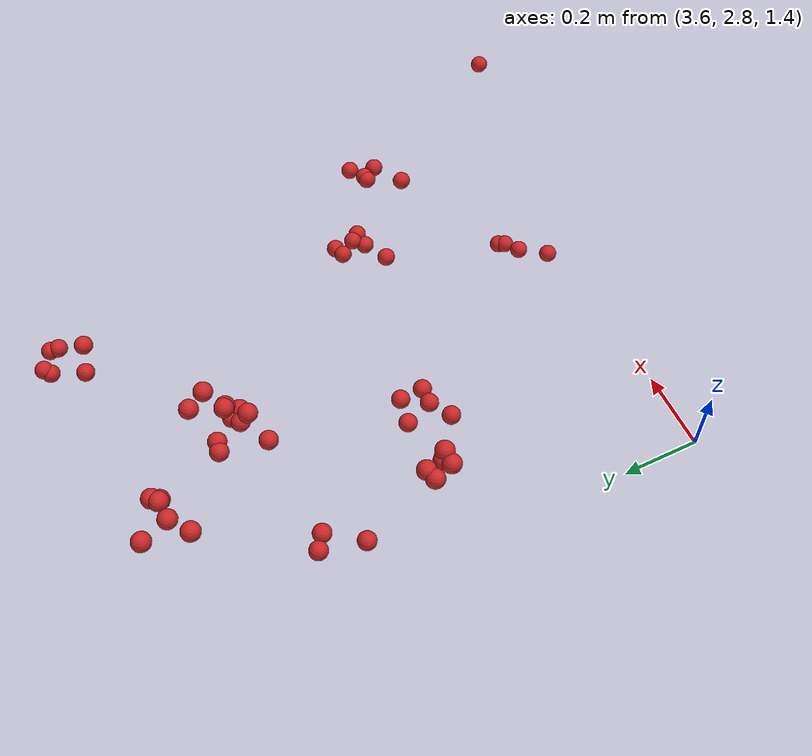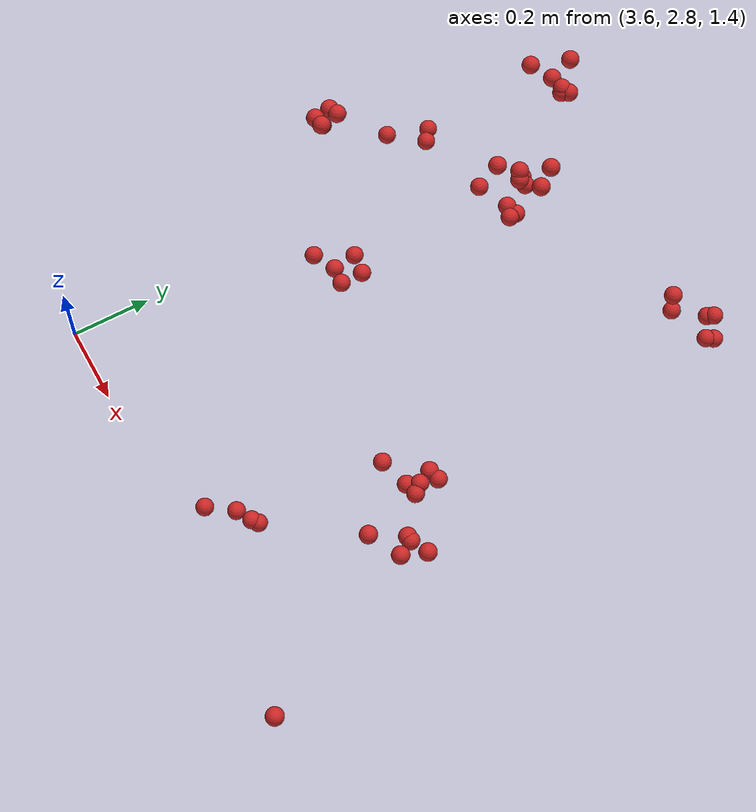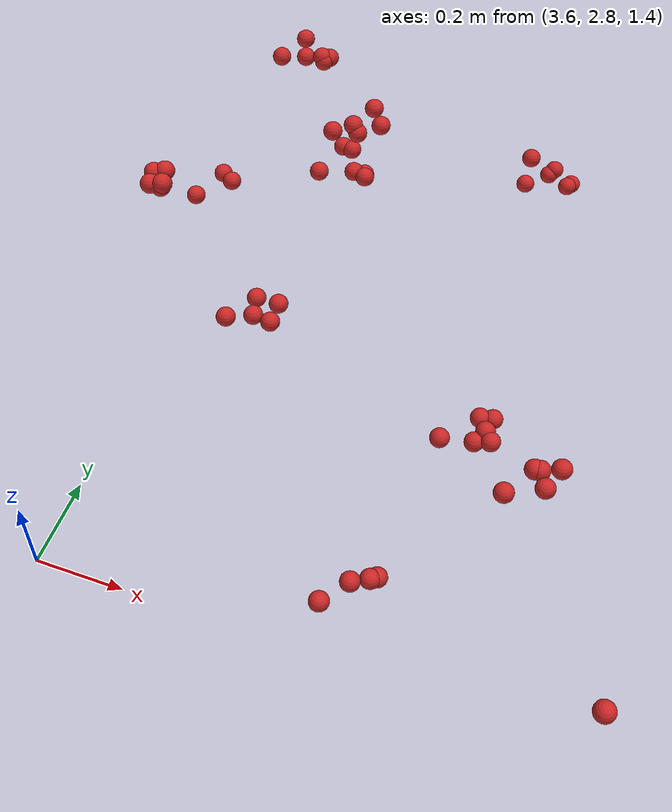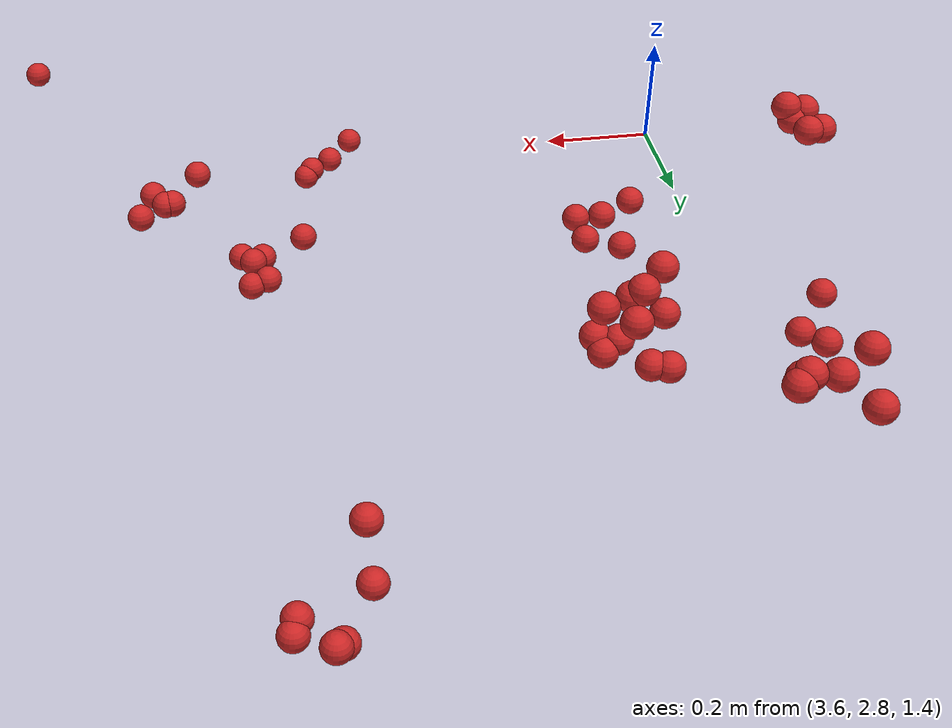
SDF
<sdf version="1.4">
 <model name="fruit_population">
  <static>true</static>
  <link name="fruit_2">
   <pose>4.334659351275422 3.28331785173383 1.552554481045821 0 0 0</pose>
   <collision name="fruit_collision_2"><geometry><sphere><radius>0.022</radius></sphere></geometry></collision>
   <visual name="visual">
    <geometry><sphere><radius>0.022</radius></sphere></geometry>
    <material><script><name>Gazebo/Red</name></script></material>
   </visual>
   <inertial>
    <mass>0.05</mass>
    <inertia>
     <ixx>9.679999999999999e-06</ixx>
     <ixy>0.0</ixy>
     <ixz>0.0</ixz>
     <iyy>9.679999999999999e-06</iyy>
     <iyz>0.0</iyz>
     <izz>9.679999999999999e-06</izz>
    </inertia>
   </inertial>
   <sensor name="fruit_contact_2" type="contact">
    <plugin name="contact_plugin_2" filename="libcontact_plugin.so"/>
    <contact><collision>fruit_collision_2</collision><topic>fruit_contact_topic_2</topic></contact>
   </sensor>
  </link>
  <link name="fruit_46">
   <pose>4.322756285475204 4.087503558933903 1.5737772385149176 0 0 0</pose>
   <collision name="fruit_collision_46"><geometry><sphere><radius>0.022</radius></sphere></geometry></collision>
   <visual name="visual">
    <geometry><sphere><radius>0.022</radius></sphere></geometry>
    <material><script><name>Gazebo/Red</name></script></material>
   </visual>
   <inertial>
    <mass>0.05</mass>
    <inertia>
     <ixx>9.679999999999999e-06</ixx>
     <ixy>0.0</ixy>
     <ixz>0.0</ixz>
     <iyy>9.679999999999999e-06</iyy>
     <iyz>0.0</iyz>
     <izz>9.679999999999999e-06</izz>
    </inertia>
   </inertial>
   <sensor name="fruit_contact_46" type="contact">
    <plugin name="contact_plugin_46" filename="libcontact_plugin.so"/>
    <contact><collision>fruit_collision_46</collision><topic>fruit_contact_topic_46</topic></contact>
   </sensor>
  </link>
  <link name="fruit_60">
   <pose>3.6940636815425827 4.036632999700671 1.8455435300737626 0 0 0</pose>
   <collision name="fruit_collision_60"><geometry><sphere><radius>0.022</radius></sphere></geometry></collision>
   <visual name="visual">
    <geometry><sphere><radius>0.022</radius></sphere></geometry>
    <material><script><name>Gazebo/Red</name></script></material>
   </visual>
   <inertial>
    <mass>0.05</mass>
    <inertia>
     <ixx>9.679999999999999e-06</ixx>
     <ixy>0.0</ixy>
     <ixz>0.0</ixz>
     <iyy>9.679999999999999e-06</iyy>
     <iyz>0.0</iyz>
     <izz>9.679999999999999e-06</izz>
    </inertia>
   </inertial>
   <sensor name="fruit_contact_60" type="contact">
    <plugin name="contact_plugin_60" filename="libcontact_plugin.so"/>
    <contact><collision>fruit_collision_60</collision><topic>fruit_contact_topic_60</topic></contact>
   </sensor>
  </link>
  <link name="fruit_91">
   <pose>4.209723910305282 2.8726865034884606 1.4810726799619405 0 0 0</pose>
   <collision name="fruit_collision_91"><geometry><sphere><radius>0.022</radius></sphere></geometry></collision>
   <visual name="visual">
    <geometry><sphere><radius>0.022</radius></sphere></geometry>
    <material><script><name>Gazebo/Red</name></script></material>
   </visual>
   <inertial>
    <mass>0.05</mass>
    <inertia>
     <ixx>9.679999999999999e-06</ixx>
     <ixy>0.0</ixy>
     <ixz>0.0</ixz>
     <iyy>9.679999999999999e-06</iyy>
     <iyz>0.0</iyz>
     <izz>9.679999999999999e-06</izz>
    </inertia>
   </inertial>
   <sensor name="fruit_contact_91" type="contact">
    <plugin name="contact_plugin_91" filename="libcontact_plugin.so"/>
    <contact><collision>fruit_collision_91</collision><topic>fruit_contact_topic_91</topic></contact>
   </sensor>
  </link>
  <link name="fruit_110">
   <pose>3.9002916754481634 3.826975810161621 1.8386889798394044 0 0 0</pose>
   <collision name="fruit_collision_110"><geometry><sphere><radius>0.022</radius></sphere></geometry></collision>
   <visual name="visual">
    <geometry><sphere><radius>0.022</radius></sphere></geometry>
    <material><script><name>Gazebo/Red</name></script></material>
   </visual>
   <inertial>
    <mass>0.05</mass>
    <inertia>
     <ixx>9.679999999999999e-06</ixx>
     <ixy>0.0</ixy>
     <ixz>0.0</ixz>
     <iyy>9.679999999999999e-06</iyy>
     <iyz>0.0</iyz>
     <izz>9.679999999999999e-06</izz>
    </inertia>
   </inertial>
   <sensor name="fruit_contact_110" type="contact">
    <plugin name="contact_plugin_110" filename="libcontact_plugin.so"/>
    <contact><collision>fruit_collision_110</collision><topic>fruit_contact_topic_110</topic></contact>
   </sensor>
  </link>
  <link name="fruit_117">
   <pose>3.807590318801169 3.3776291044536717 1.6400689129434316 0 0 0</pose>
   <collision name="fruit_collision_117"><geometry><sphere><radius>0.022</radius></sphere></geometry></collision>
   <visual name="visual">
    <geometry><sphere><radius>0.022</radius></sphere></geometry>
    <material><script><name>Gazebo/Red</name></script></material>
   </visual>
   <inertial>
    <mass>0.05</mass>
    <inertia>
     <ixx>9.679999999999999e-06</ixx>
     <ixy>0.0</ixy>
     <ixz>0.0</ixz>
     <iyy>9.679999999999999e-06</iyy>
     <iyz>0.0</iyz>
     <izz>9.679999999999999e-06</izz>
    </inertia>
   </inertial>
   <sensor name="fruit_contact_117" type="contact">
    <plugin name="contact_plugin_117" filename="libcontact_plugin.so"/>
    <contact><collision>fruit_collision_117</collision><topic>fruit_contact_topic_117</topic></contact>
   </sensor>
  </link>
  <link name="fruit_121">
   <pose>3.8775764384555416 3.794841752884628 1.73439635223546 0 0 0</pose>
   <collision name="fruit_collision_121"><geometry><sphere><radius>0.022</radius></sphere></geometry></collision>
   <visual name="visual">
    <geometry><sphere><radius>0.022</radius></sphere></geometry>
    <material><script><name>Gazebo/Red</name></script></material>
   </visual>
   <inertial>
    <mass>0.05</mass>
    <inertia>
     <ixx>9.679999999999999e-06</ixx>
     <ixy>0.0</ixy>
     <ixz>0.0</ixz>
     <iyy>9.679999999999999e-06</iyy>
     <iyz>0.0</iyz>
     <izz>9.679999999999999e-06</izz>
    </inertia>
   </inertial>
   <sensor name="fruit_contact_121" type="contact">
    <plugin name="contact_plugin_121" filename="libcontact_plugin.so"/>
    <contact><collision>fruit_collision_121</collision><topic>fruit_contact_topic_121</topic></contact>
   </sensor>
  </link>
  <link name="fruit_124">
   <pose>4.329039805926218 4.073743820483389 1.67377606460272 0 0 0</pose>
   <collision name="fruit_collision_124"><geometry><sphere><radius>0.022</radius></sphere></geometry></collision>
   <visual name="visual">
    <geometry><sphere><radius>0.022</radius></sphere></geometry>
    <material><script><name>Gazebo/Red</name></script></material>
   </visual>
   <inertial>
    <mass>0.05</mass>
    <inertia>
     <ixx>9.679999999999999e-06</ixx>
     <ixy>0.0</ixy>
     <ixz>0.0</ixz>
     <iyy>9.679999999999999e-06</iyy>
     <iyz>0.0</iyz>
     <izz>9.679999999999999e-06</izz>
    </inertia>
   </inertial>
   <sensor name="fruit_contact_124" type="contact">
    <plugin name="contact_plugin_124" filename="libcontact_plugin.so"/>
    <contact><collision>fruit_collision_124</collision><topic>fruit_contact_topic_124</topic></contact>
   </sensor>
  </link>
  <link name="fruit_149">
   <pose>4.501498149110639 3.158055221457446 1.6111703319243045 0 0 0</pose>
   <collision name="fruit_collision_149"><geometry><sphere><radius>0.022</radius></sphere></geometry></collision>
   <visual name="visual">
    <geometry><sphere><radius>0.022</radius></sphere></geometry>
    <material><script><name>Gazebo/Red</name></script></material>
   </visual>
   <inertial>
    <mass>0.05</mass>
    <inertia>
     <ixx>9.679999999999999e-06</ixx>
     <ixy>0.0</ixy>
     <ixz>0.0</ixz>
     <iyy>9.679999999999999e-06</iyy>
     <iyz>0.0</iyz>
     <izz>9.679999999999999e-06</izz>
    </inertia>
   </inertial>
   <sensor name="fruit_contact_149" type="contact">
    <plugin name="contact_plugin_149" filename="libcontact_plugin.so"/>
    <contact><collision>fruit_collision_149</collision><topic>fruit_contact_topic_149</topic></contact>
   </sensor>
  </link>
  <link name="fruit_153">
   <pose>3.6009380790036816 3.6902924799086536 1.663074999753007 0 0 0</pose>
   <collision name="fruit_collision_153"><geometry><sphere><radius>0.022</radius></sphere></geometry></collision>
   <visual name="visual">
    <geometry><sphere><radius>0.022</radius></sphere></geometry>
    <material><script><name>Gazebo/Red</name></script></material>
   </visual>
   <inertial>
    <mass>0.05</mass>
    <inertia>
     <ixx>9.679999999999999e-06</ixx>
     <ixy>0.0</ixy>
     <ixz>0.0</ixz>
     <iyy>9.679999999999999e-06</iyy>
     <iyz>0.0</iyz>
     <izz>9.679999999999999e-06</izz>
    </inertia>
   </inertial>
   <sensor name="fruit_contact_153" type="contact">
    <plugin name="contact_plugin_153" filename="libcontact_plugin.so"/>
    <contact><collision>fruit_collision_153</collision><topic>fruit_contact_topic_153</topic></contact>
   </sensor>
  </link>
  <link name="fruit_197">
   <pose>3.995893784266668 3.8918003896902347 1.829508518271714 0 0 0</pose>
   <collision name="fruit_collision_197"><geometry><sphere><radius>0.022</radius></sphere></geometry></collision>
   <visual name="visual">
    <geometry><sphere><radius>0.022</radius></sphere></geometry>
    <material><script><name>Gazebo/Red</name></script></material>
   </visual>
   <inertial>
    <mass>0.05</mass>
    <inertia>
     <ixx>9.679999999999999e-06</ixx>
     <ixy>0.0</ixy>
     <ixz>0.0</ixz>
     <iyy>9.679999999999999e-06</iyy>
     <iyz>0.0</iyz>
     <izz>9.679999999999999e-06</izz>
    </inertia>
   </inertial>
   <sensor name="fruit_contact_197" type="contact">
    <plugin name="contact_plugin_197" filename="libcontact_plugin.so"/>
    <contact><collision>fruit_collision_197</collision><topic>fruit_contact_topic_197</topic></contact>
   </sensor>
  </link>
  <link name="fruit_209">
   <pose>4.430021590904084 4.14375809000878 1.5558769405690935 0 0 0</pose>
   <collision name="fruit_collision_209"><geometry><sphere><radius>0.022</radius></sphere></geometry></collision>
   <visual name="visual">
    <geometry><sphere><radius>0.022</radius></sphere></geometry>
    <material><script><name>Gazebo/Red</name></script></material>
   </visual>
   <inertial>
    <mass>0.05</mass>
    <inertia>
     <ixx>9.679999999999999e-06</ixx>
     <ixy>0.0</ixy>
     <ixz>0.0</ixz>
     <iyy>9.679999999999999e-06</iyy>
     <iyz>0.0</iyz>
     <izz>9.679999999999999e-06</izz>
    </inertia>
   </inertial>
   <sensor name="fruit_contact_209" type="contact">
    <plugin name="contact_plugin_209" filename="libcontact_plugin.so"/>
    <contact><collision>fruit_collision_209</collision><topic>fruit_contact_topic_209</topic></contact>
   </sensor>
  </link>
  <link name="fruit_210">
   <pose>4.368949265916796 4.162538052210775 1.5536720195240787 0 0 0</pose>
   <collision name="fruit_collision_210"><geometry><sphere><radius>0.022</radius></sphere></geometry></collision>
   <visual name="visual">
    <geometry><sphere><radius>0.022</radius></sphere></geometry>
    <material><script><name>Gazebo/Red</name></script></material>
   </visual>
   <inertial>
    <mass>0.05</mass>
    <inertia>
     <ixx>9.679999999999999e-06</ixx>
     <ixy>0.0</ixy>
     <ixz>0.0</ixz>
     <iyy>9.679999999999999e-06</iyy>
     <iyz>0.0</iyz>
     <izz>9.679999999999999e-06</izz>
    </inertia>
   </inertial>
   <sensor name="fruit_contact_210" type="contact">
    <plugin name="contact_plugin_210" filename="libcontact_plugin.so"/>
    <contact><collision>fruit_collision_210</collision><topic>fruit_contact_topic_210</topic></contact>
   </sensor>
  </link>
  <link name="fruit_220">
   <pose>4.253789477154367 2.9346303274925716 1.4810207491571716 0 0 0</pose>
   <collision name="fruit_collision_220"><geometry><sphere><radius>0.022</radius></sphere></geometry></collision>
   <visual name="visual">
    <geometry><sphere><radius>0.022</radius></sphere></geometry>
    <material><script><name>Gazebo/Red</name></script></material>
   </visual>
   <inertial>
    <mass>0.05</mass>
    <inertia>
     <ixx>9.679999999999999e-06</ixx>
     <ixy>0.0</ixy>
     <ixz>0.0</ixz>
     <iyy>9.679999999999999e-06</iyy>
     <iyz>0.0</iyz>
     <izz>9.679999999999999e-06</izz>
    </inertia>
   </inertial>
   <sensor name="fruit_contact_220" type="contact">
    <plugin name="contact_plugin_220" filename="libcontact_plugin.so"/>
    <contact><collision>fruit_collision_220</collision><topic>fruit_contact_topic_220</topic></contact>
   </sensor>
  </link>
  <link name="fruit_263">
   <pose>3.7202176361754233 4.133198231668476 1.8363677774579243 0 0 0</pose>
   <collision name="fruit_collision_263"><geometry><sphere><radius>0.022</radius></sphere></geometry></collision>
   <visual name="visual">
    <geometry><sphere><radius>0.022</radius></sphere></geometry>
    <material><script><name>Gazebo/Red</name></script></material>
   </visual>
   <inertial>
    <mass>0.05</mass>
    <inertia>
     <ixx>9.679999999999999e-06</ixx>
     <ixy>0.0</ixy>
     <ixz>0.0</ixz>
     <iyy>9.679999999999999e-06</iyy>
     <iyz>0.0</iyz>
     <izz>9.679999999999999e-06</izz>
    </inertia>
   </inertial>
   <sensor name="fruit_contact_263" type="contact">
    <plugin name="contact_plugin_263" filename="libcontact_plugin.so"/>
    <contact><collision>fruit_collision_263</collision><topic>fruit_contact_topic_263</topic></contact>
   </sensor>
  </link>
  <link name="fruit_270">
   <pose>4.4009135894002975 3.3738395835167405 1.5373210521787173 0 0 0</pose>
   <collision name="fruit_collision_270"><geometry><sphere><radius>0.022</radius></sphere></geometry></collision>
   <visual name="visual">
    <geometry><sphere><radius>0.022</radius></sphere></geometry>
    <material><script><name>Gazebo/Red</name></script></material>
   </visual>
   <inertial>
    <mass>0.05</mass>
    <inertia>
     <ixx>9.679999999999999e-06</ixx>
     <ixy>0.0</ixy>
     <ixz>0.0</ixz>
     <iyy>9.679999999999999e-06</iyy>
     <iyz>0.0</iyz>
     <izz>9.679999999999999e-06</izz>
    </inertia>
   </inertial>
   <sensor name="fruit_contact_270" type="contact">
    <plugin name="contact_plugin_270" filename="libcontact_plugin.so"/>
    <contact><collision>fruit_collision_270</collision><topic>fruit_contact_topic_270</topic></contact>
   </sensor>
  </link>
  <link name="fruit_302">
   <pose>4.546696078827369 3.2357108224718725 1.6069591295897425 0 0 0</pose>
   <collision name="fruit_collision_302"><geometry><sphere><radius>0.022</radius></sphere></geometry></collision>
   <visual name="visual">
    <geometry><sphere><radius>0.022</radius></sphere></geometry>
    <material><script><name>Gazebo/Red</name></script></material>
   </visual>
   <inertial>
    <mass>0.05</mass>
    <inertia>
     <ixx>9.679999999999999e-06</ixx>
     <ixy>0.0</ixy>
     <ixz>0.0</ixz>
     <iyy>9.679999999999999e-06</iyy>
     <iyz>0.0</iyz>
     <izz>9.679999999999999e-06</izz>
    </inertia>
   </inertial>
   <sensor name="fruit_contact_302" type="contact">
    <plugin name="contact_plugin_302" filename="libcontact_plugin.so"/>
    <contact><collision>fruit_collision_302</collision><topic>fruit_contact_topic_302</topic></contact>
   </sensor>
  </link>
  <link name="fruit_304">
   <pose>3.9513733718848063 3.8308484436604187 1.7245655831311812 0 0 0</pose>
   <collision name="fruit_collision_304"><geometry><sphere><radius>0.022</radius></sphere></geometry></collision>
   <visual name="visual">
    <geometry><sphere><radius>0.022</radius></sphere></geometry>
    <material><script><name>Gazebo/Red</name></script></material>
   </visual>
   <inertial>
    <mass>0.05</mass>
    <inertia>
     <ixx>9.679999999999999e-06</ixx>
     <ixy>0.0</ixy>
     <ixz>0.0</ixz>
     <iyy>9.679999999999999e-06</iyy>
     <iyz>0.0</iyz>
     <izz>9.679999999999999e-06</izz>
    </inertia>
   </inertial>
   <sensor name="fruit_contact_304" type="contact">
    <plugin name="contact_plugin_304" filename="libcontact_plugin.so"/>
    <contact><collision>fruit_collision_304</collision><topic>fruit_contact_topic_304</topic></contact>
   </sensor>
  </link>
  <link name="fruit_307">
   <pose>3.9644888994467675 3.9363109394288234 1.8368784847798745 0 0 0</pose>
   <collision name="fruit_collision_307"><geometry><sphere><radius>0.022</radius></sphere></geometry></collision>
   <visual name="visual">
    <geometry><sphere><radius>0.022</radius></sphere></geometry>
    <material><script><name>Gazebo/Red</name></script></material>
   </visual>
   <inertial>
    <mass>0.05</mass>
    <inertia>
     <ixx>9.679999999999999e-06</ixx>
     <ixy>0.0</ixy>
     <ixz>0.0</ixz>
     <iyy>9.679999999999999e-06</iyy>
     <iyz>0.0</iyz>
     <izz>9.679999999999999e-06</izz>
    </inertia>
   </inertial>
   <sensor name="fruit_contact_307" type="contact">
    <plugin name="contact_plugin_307" filename="libcontact_plugin.so"/>
    <contact><collision>fruit_collision_307</collision><topic>fruit_contact_topic_307</topic></contact>
   </sensor>
  </link>
  <link name="fruit_316">
   <pose>4.558525506969052 3.2369186150731157 1.6064281079674192 0 0 0</pose>
   <collision name="fruit_collision_316"><geometry><sphere><radius>0.022</radius></sphere></geometry></collision>
   <visual name="visual">
    <geometry><sphere><radius>0.022</radius></sphere></geometry>
    <material><script><name>Gazebo/Red</name></script></material>
   </visual>
   <inertial>
    <mass>0.05</mass>
    <inertia>
     <ixx>9.679999999999999e-06</ixx>
     <ixy>0.0</ixy>
     <ixz>0.0</ixz>
     <iyy>9.679999999999999e-06</iyy>
     <iyz>0.0</iyz>
     <izz>9.679999999999999e-06</izz>
    </inertia>
   </inertial>
   <sensor name="fruit_contact_316" type="contact">
    <plugin name="contact_plugin_316" filename="libcontact_plugin.so"/>
    <contact><collision>fruit_collision_316</collision><topic>fruit_contact_topic_316</topic></contact>
   </sensor>
  </link>
  <link name="fruit_333">
   <pose>3.900799680604238 3.4602108603745423 1.6298003944786044 0 0 0</pose>
   <collision name="fruit_collision_333"><geometry><sphere><radius>0.022</radius></sphere></geometry></collision>
   <visual name="visual">
    <geometry><sphere><radius>0.022</radius></sphere></geometry>
    <material><script><name>Gazebo/Red</name></script></material>
   </visual>
   <inertial>
    <mass>0.05</mass>
    <inertia>
     <ixx>9.679999999999999e-06</ixx>
     <ixy>0.0</ixy>
     <ixz>0.0</ixz>
     <iyy>9.679999999999999e-06</iyy>
     <iyz>0.0</iyz>
     <izz>9.679999999999999e-06</izz>
    </inertia>
   </inertial>
   <sensor name="fruit_contact_333" type="contact">
    <plugin name="contact_plugin_333" filename="libcontact_plugin.so"/>
    <contact><collision>fruit_collision_333</collision><topic>fruit_contact_topic_333</topic></contact>
   </sensor>
  </link>
  <link name="fruit_341">
   <pose>4.379512944927213 4.175056381226401 1.5626458058106545 0 0 0</pose>
   <collision name="fruit_collision_341"><geometry><sphere><radius>0.022</radius></sphere></geometry></collision>
   <visual name="visual">
    <geometry><sphere><radius>0.022</radius></sphere></geometry>
    <material><script><name>Gazebo/Red</name></script></material>
   </visual>
   <inertial>
    <mass>0.05</mass>
    <inertia>
     <ixx>9.679999999999999e-06</ixx>
     <ixy>0.0</ixy>
     <ixz>0.0</ixz>
     <iyy>9.679999999999999e-06</iyy>
     <iyz>0.0</iyz>
     <izz>9.679999999999999e-06</izz>
    </inertia>
   </inertial>
   <sensor name="fruit_contact_341" type="contact">
    <plugin name="contact_plugin_341" filename="libcontact_plugin.so"/>
    <contact><collision>fruit_collision_341</collision><topic>fruit_contact_topic_341</topic></contact>
   </sensor>
  </link>
  <link name="fruit_343">
   <pose>4.289420750716607 2.956383340856209 1.4757284597380242 0 0 0</pose>
   <collision name="fruit_collision_343"><geometry><sphere><radius>0.022</radius></sphere></geometry></collision>
   <visual name="visual">
    <geometry><sphere><radius>0.022</radius></sphere></geometry>
    <material><script><name>Gazebo/Red</name></script></material>
   </visual>
   <inertial>
    <mass>0.05</mass>
    <inertia>
     <ixx>9.679999999999999e-06</ixx>
     <ixy>0.0</ixy>
     <ixz>0.0</ixz>
     <iyy>9.679999999999999e-06</iyy>
     <iyz>0.0</iyz>
     <izz>9.679999999999999e-06</izz>
    </inertia>
   </inertial>
   <sensor name="fruit_contact_343" type="contact">
    <plugin name="contact_plugin_343" filename="libcontact_plugin.so"/>
    <contact><collision>fruit_collision_343</collision><topic>fruit_contact_topic_343</topic></contact>
   </sensor>
  </link>
  <link name="fruit_358">
   <pose>4.428322288315712 3.3823489524354042 1.5332041027092158 0 0 0</pose>
   <collision name="fruit_collision_358"><geometry><sphere><radius>0.022</radius></sphere></geometry></collision>
   <visual name="visual">
    <geometry><sphere><radius>0.022</radius></sphere></geometry>
    <material><script><name>Gazebo/Red</name></script></material>
   </visual>
   <inertial>
    <mass>0.05</mass>
    <inertia>
     <ixx>9.679999999999999e-06</ixx>
     <ixy>0.0</ixy>
     <ixz>0.0</ixz>
     <iyy>9.679999999999999e-06</iyy>
     <iyz>0.0</iyz>
     <izz>9.679999999999999e-06</izz>
    </inertia>
   </inertial>
   <sensor name="fruit_contact_358" type="contact">
    <plugin name="contact_plugin_358" filename="libcontact_plugin.so"/>
    <contact><collision>fruit_collision_358</collision><topic>fruit_contact_topic_358</topic></contact>
   </sensor>
  </link>
  <link name="fruit_387">
   <pose>3.6046909314345204 3.553836139203901 1.8617098483975631 0 0 0</pose>
   <collision name="fruit_collision_387"><geometry><sphere><radius>0.022</radius></sphere></geometry></collision>
   <visual name="visual">
    <geometry><sphere><radius>0.022</radius></sphere></geometry>
    <material><script><name>Gazebo/Red</name></script></material>
   </visual>
   <inertial>
    <mass>0.05</mass>
    <inertia>
     <ixx>9.679999999999999e-06</ixx>
     <ixy>0.0</ixy>
     <ixz>0.0</ixz>
     <iyy>9.679999999999999e-06</iyy>
     <iyz>0.0</iyz>
     <izz>9.679999999999999e-06</izz>
    </inertia>
   </inertial>
   <sensor name="fruit_contact_387" type="contact">
    <plugin name="contact_plugin_387" filename="libcontact_plugin.so"/>
    <contact><collision>fruit_collision_387</collision><topic>fruit_contact_topic_387</topic></contact>
   </sensor>
  </link>
  <link name="fruit_396">
   <pose>3.900196406220392 3.902048505335941 1.7287397201845673 0 0 0</pose>
   <collision name="fruit_collision_396"><geometry><sphere><radius>0.022</radius></sphere></geometry></collision>
   <visual name="visual">
    <geometry><sphere><radius>0.022</radius></sphere></geometry>
    <material><script><name>Gazebo/Red</name></script></material>
   </visual>
   <inertial>
    <mass>0.05</mass>
    <inertia>
     <ixx>9.679999999999999e-06</ixx>
     <ixy>0.0</ixy>
     <ixz>0.0</ixz>
     <iyy>9.679999999999999e-06</iyy>
     <iyz>0.0</iyz>
     <izz>9.679999999999999e-06</izz>
    </inertia>
   </inertial>
   <sensor name="fruit_contact_396" type="contact">
    <plugin name="contact_plugin_396" filename="libcontact_plugin.so"/>
    <contact><collision>fruit_collision_396</collision><topic>fruit_contact_topic_396</topic></contact>
   </sensor>
  </link>
  <link name="fruit_404">
   <pose>3.5936302040022237 3.501340809418179 1.866071176424576 0 0 0</pose>
   <collision name="fruit_collision_404"><geometry><sphere><radius>0.022</radius></sphere></geometry></collision>
   <visual name="visual">
    <geometry><sphere><radius>0.022</radius></sphere></geometry>
    <material><script><name>Gazebo/Red</name></script></material>
   </visual>
   <inertial>
    <mass>0.05</mass>
    <inertia>
     <ixx>9.679999999999999e-06</ixx>
     <ixy>0.0</ixy>
     <ixz>0.0</ixz>
     <iyy>9.679999999999999e-06</iyy>
     <iyz>0.0</iyz>
     <izz>9.679999999999999e-06</izz>
    </inertia>
   </inertial>
   <sensor name="fruit_contact_404" type="contact">
    <plugin name="contact_plugin_404" filename="libcontact_plugin.so"/>
    <contact><collision>fruit_collision_404</collision><topic>fruit_contact_topic_404</topic></contact>
   </sensor>
  </link>
  <link name="fruit_419">
   <pose>4.301229501346885 2.9683259802435398 1.468453105136675 0 0 0</pose>
   <collision name="fruit_collision_419"><geometry><sphere><radius>0.022</radius></sphere></geometry></collision>
   <visual name="visual">
    <geometry><sphere><radius>0.022</radius></sphere></geometry>
    <material><script><name>Gazebo/Red</name></script></material>
   </visual>
   <inertial>
    <mass>0.05</mass>
    <inertia>
     <ixx>9.679999999999999e-06</ixx>
     <ixy>0.0</ixy>
     <ixz>0.0</ixz>
     <iyy>9.679999999999999e-06</iyy>
     <iyz>0.0</iyz>
     <izz>9.679999999999999e-06</izz>
    </inertia>
   </inertial>
   <sensor name="fruit_contact_419" type="contact">
    <plugin name="contact_plugin_419" filename="libcontact_plugin.so"/>
    <contact><collision>fruit_collision_419</collision><topic>fruit_contact_topic_419</topic></contact>
   </sensor>
  </link>
  <link name="fruit_420">
   <pose>3.936274389760051 3.867185428887078 1.8343814999476549 0 0 0</pose>
   <collision name="fruit_collision_420"><geometry><sphere><radius>0.022</radius></sphere></geometry></collision>
   <visual name="visual">
    <geometry><sphere><radius>0.022</radius></sphere></geometry>
    <material><script><name>Gazebo/Red</name></script></material>
   </visual>
   <inertial>
    <mass>0.05</mass>
    <inertia>
     <ixx>9.679999999999999e-06</ixx>
     <ixy>0.0</ixy>
     <ixz>0.0</ixz>
     <iyy>9.679999999999999e-06</iyy>
     <iyz>0.0</iyz>
     <izz>9.679999999999999e-06</izz>
    </inertia>
   </inertial>
   <sensor name="fruit_contact_420" type="contact">
    <plugin name="contact_plugin_420" filename="libcontact_plugin.so"/>
    <contact><collision>fruit_collision_420</collision><topic>fruit_contact_topic_420</topic></contact>
   </sensor>
  </link>
  <link name="fruit_431">
   <pose>3.98210308304305 3.8203807368759266 1.7258408259185114 0 0 0</pose>
   <collision name="fruit_collision_431"><geometry><sphere><radius>0.022</radius></sphere></geometry></collision>
   <visual name="visual">
    <geometry><sphere><radius>0.022</radius></sphere></geometry>
    <material><script><name>Gazebo/Red</name></script></material>
   </visual>
   <inertial>
    <mass>0.05</mass>
    <inertia>
     <ixx>9.679999999999999e-06</ixx>
     <ixy>0.0</ixy>
     <ixz>0.0</ixz>
     <iyy>9.679999999999999e-06</iyy>
     <iyz>0.0</iyz>
     <izz>9.679999999999999e-06</izz>
    </inertia>
   </inertial>
   <sensor name="fruit_contact_431" type="contact">
    <plugin name="contact_plugin_431" filename="libcontact_plugin.so"/>
    <contact><collision>fruit_collision_431</collision><topic>fruit_contact_topic_431</topic></contact>
   </sensor>
  </link>
  <link name="fruit_474">
   <pose>4.577830305377288 3.200486352501265 1.6035388729487168 0 0 0</pose>
   <collision name="fruit_collision_474"><geometry><sphere><radius>0.022</radius></sphere></geometry></collision>
   <visual name="visual">
    <geometry><sphere><radius>0.022</radius></sphere></geometry>
    <material><script><name>Gazebo/Red</name></script></material>
   </visual>
   <inertial>
    <mass>0.05</mass>
    <inertia>
     <ixx>9.679999999999999e-06</ixx>
     <ixy>0.0</ixy>
     <ixz>0.0</ixz>
     <iyy>9.679999999999999e-06</iyy>
     <iyz>0.0</iyz>
     <izz>9.679999999999999e-06</izz>
    </inertia>
   </inertial>
   <sensor name="fruit_contact_474" type="contact">
    <plugin name="contact_plugin_474" filename="libcontact_plugin.so"/>
    <contact><collision>fruit_collision_474</collision><topic>fruit_contact_topic_474</topic></contact>
   </sensor>
  </link>
  <link name="fruit_478">
   <pose>3.628808733660146 3.791591860793532 1.6539408488341627 0 0 0</pose>
   <collision name="fruit_collision_478"><geometry><sphere><radius>0.022</radius></sphere></geometry></collision>
   <visual name="visual">
    <geometry><sphere><radius>0.022</radius></sphere></geometry>
    <material><script><name>Gazebo/Red</name></script></material>
   </visual>
   <inertial>
    <mass>0.05</mass>
    <inertia>
     <ixx>9.679999999999999e-06</ixx>
     <ixy>0.0</ixy>
     <ixz>0.0</ixz>
     <iyy>9.679999999999999e-06</iyy>
     <iyz>0.0</iyz>
     <izz>9.679999999999999e-06</izz>
    </inertia>
   </inertial>
   <sensor name="fruit_contact_478" type="contact">
    <plugin name="contact_plugin_478" filename="libcontact_plugin.so"/>
    <contact><collision>fruit_collision_478</collision><topic>fruit_contact_topic_478</topic></contact>
   </sensor>
  </link>
  <link name="fruit_488">
   <pose>3.8432911046124336 3.4696923021893817 1.618590531033421 0 0 0</pose>
   <collision name="fruit_collision_488"><geometry><sphere><radius>0.022</radius></sphere></geometry></collision>
   <visual name="visual">
    <geometry><sphere><radius>0.022</radius></sphere></geometry>
    <material><script><name>Gazebo/Red</name></script></material>
   </visual>
   <inertial>
    <mass>0.05</mass>
    <inertia>
     <ixx>9.679999999999999e-06</ixx>
     <ixy>0.0</ixy>
     <ixz>0.0</ixz>
     <iyy>9.679999999999999e-06</iyy>
     <iyz>0.0</iyz>
     <izz>9.679999999999999e-06</izz>
    </inertia>
   </inertial>
   <sensor name="fruit_contact_488" type="contact">
    <plugin name="contact_plugin_488" filename="libcontact_plugin.so"/>
    <contact><collision>fruit_collision_488</collision><topic>fruit_contact_topic_488</topic></contact>
   </sensor>
  </link>
  <link name="fruit_516">
   <pose>3.861512727405538 3.4062628550387206 1.6354475120835605 0 0 0</pose>
   <collision name="fruit_collision_516"><geometry><sphere><radius>0.022</radius></sphere></geometry></collision>
   <visual name="visual">
    <geometry><sphere><radius>0.022</radius></sphere></geometry>
    <material><script><name>Gazebo/Red</name></script></material>
   </visual>
   <inertial>
    <mass>0.05</mass>
    <inertia>
     <ixx>9.679999999999999e-06</ixx>
     <ixy>0.0</ixy>
     <ixz>0.0</ixz>
     <iyy>9.679999999999999e-06</iyy>
     <iyz>0.0</iyz>
     <izz>9.679999999999999e-06</izz>
    </inertia>
   </inertial>
   <sensor name="fruit_contact_516" type="contact">
    <plugin name="contact_plugin_516" filename="libcontact_plugin.so"/>
    <contact><collision>fruit_collision_516</collision><topic>fruit_contact_topic_516</topic></contact>
   </sensor>
  </link>
  <link name="fruit_544">
   <pose>3.6605797161407856 3.7686492776862375 1.6582390089426766 0 0 0</pose>
   <collision name="fruit_collision_544"><geometry><sphere><radius>0.022</radius></sphere></geometry></collision>
   <visual name="visual">
    <geometry><sphere><radius>0.022</radius></sphere></geometry>
    <material><script><name>Gazebo/Red</name></script></material>
   </visual>
   <inertial>
    <mass>0.05</mass>
    <inertia>
     <ixx>9.679999999999999e-06</ixx>
     <ixy>0.0</ixy>
     <ixz>0.0</ixz>
     <iyy>9.679999999999999e-06</iyy>
     <iyz>0.0</iyz>
     <izz>9.679999999999999e-06</izz>
    </inertia>
   </inertial>
   <sensor name="fruit_contact_544" type="contact">
    <plugin name="contact_plugin_544" filename="libcontact_plugin.so"/>
    <contact><collision>fruit_collision_544</collision><topic>fruit_contact_topic_544</topic></contact>
   </sensor>
  </link>
  <link name="fruit_556">
   <pose>3.801548941064514 4.081833236461295 1.836001575369609 0 0 0</pose>
   <collision name="fruit_collision_556"><geometry><sphere><radius>0.022</radius></sphere></geometry></collision>
   <visual name="visual">
    <geometry><sphere><radius>0.022</radius></sphere></geometry>
    <material><script><name>Gazebo/Red</name></script></material>
   </visual>
   <inertial>
    <mass>0.05</mass>
    <inertia>
     <ixx>9.679999999999999e-06</ixx>
     <ixy>0.0</ixy>
     <ixz>0.0</ixz>
     <iyy>9.679999999999999e-06</iyy>
     <iyz>0.0</iyz>
     <izz>9.679999999999999e-06</izz>
    </inertia>
   </inertial>
   <sensor name="fruit_contact_556" type="contact">
    <plugin name="contact_plugin_556" filename="libcontact_plugin.so"/>
    <contact><collision>fruit_collision_556</collision><topic>fruit_contact_topic_556</topic></contact>
   </sensor>
  </link>
  <link name="fruit_564">
   <pose>3.744697342151266 4.068047819477564 1.8348776629855688 0 0 0</pose>
   <collision name="fruit_collision_564"><geometry><sphere><radius>0.022</radius></sphere></geometry></collision>
   <visual name="visual">
    <geometry><sphere><radius>0.022</radius></sphere></geometry>
    <material><script><name>Gazebo/Red</name></script></material>
   </visual>
   <inertial>
    <mass>0.05</mass>
    <inertia>
     <ixx>9.679999999999999e-06</ixx>
     <ixy>0.0</ixy>
     <ixz>0.0</ixz>
     <iyy>9.679999999999999e-06</iyy>
     <iyz>0.0</iyz>
     <izz>9.679999999999999e-06</izz>
    </inertia>
   </inertial>
   <sensor name="fruit_contact_564" type="contact">
    <plugin name="contact_plugin_564" filename="libcontact_plugin.so"/>
    <contact><collision>fruit_collision_564</collision><topic>fruit_contact_topic_564</topic></contact>
   </sensor>
  </link>
  <link name="fruit_567">
   <pose>3.7856734153177816 4.0706363722479075 1.8430578105562034 0 0 0</pose>
   <collision name="fruit_collision_567"><geometry><sphere><radius>0.022</radius></sphere></geometry></collision>
   <visual name="visual">
    <geometry><sphere><radius>0.022</radius></sphere></geometry>
    <material><script><name>Gazebo/Red</name></script></material>
   </visual>
   <inertial>
    <mass>0.05</mass>
    <inertia>
     <ixx>9.679999999999999e-06</ixx>
     <ixy>0.0</ixy>
     <ixz>0.0</ixz>
     <iyy>9.679999999999999e-06</iyy>
     <iyz>0.0</iyz>
     <izz>9.679999999999999e-06</izz>
    </inertia>
   </inertial>
   <sensor name="fruit_contact_567" type="contact">
    <plugin name="contact_plugin_567" filename="libcontact_plugin.so"/>
    <contact><collision>fruit_collision_567</collision><topic>fruit_contact_topic_567</topic></contact>
   </sensor>
  </link>
  <link name="fruit_576">
   <pose>3.9030009857346037 3.403026418338475 1.631905524618135 0 0 0</pose>
   <collision name="fruit_collision_576"><geometry><sphere><radius>0.022</radius></sphere></geometry></collision>
   <visual name="visual">
    <geometry><sphere><radius>0.022</radius></sphere></geometry>
    <material><script><name>Gazebo/Red</name></script></material>
   </visual>
   <inertial>
    <mass>0.05</mass>
    <inertia>
     <ixx>9.679999999999999e-06</ixx>
     <ixy>0.0</ixy>
     <ixz>0.0</ixz>
     <iyy>9.679999999999999e-06</iyy>
     <iyz>0.0</iyz>
     <izz>9.679999999999999e-06</izz>
    </inertia>
   </inertial>
   <sensor name="fruit_contact_576" type="contact">
    <plugin name="contact_plugin_576" filename="libcontact_plugin.so"/>
    <contact><collision>fruit_collision_576</collision><topic>fruit_contact_topic_576</topic></contact>
   </sensor>
  </link>
  <link name="fruit_586">
   <pose>4.599463953023711 3.2596671124950856 1.5995600464288497 0 0 0</pose>
   <collision name="fruit_collision_586"><geometry><sphere><radius>0.022</radius></sphere></geometry></collision>
   <visual name="visual">
    <geometry><sphere><radius>0.022</radius></sphere></geometry>
    <material><script><name>Gazebo/Red</name></script></material>
   </visual>
   <inertial>
    <mass>0.05</mass>
    <inertia>
     <ixx>9.679999999999999e-06</ixx>
     <ixy>0.0</ixy>
     <ixz>0.0</ixz>
     <iyy>9.679999999999999e-06</iyy>
     <iyz>0.0</iyz>
     <izz>9.679999999999999e-06</izz>
    </inertia>
   </inertial>
   <sensor name="fruit_contact_586" type="contact">
    <plugin name="contact_plugin_586" filename="libcontact_plugin.so"/>
    <contact><collision>fruit_collision_586</collision><topic>fruit_contact_topic_586</topic></contact>
   </sensor>
  </link>
  <link name="fruit_616">
   <pose>4.422248240084102 3.336096072378804 1.5475222519819496 0 0 0</pose>
   <collision name="fruit_collision_616"><geometry><sphere><radius>0.022</radius></sphere></geometry></collision>
   <visual name="visual">
    <geometry><sphere><radius>0.022</radius></sphere></geometry>
    <material><script><name>Gazebo/Red</name></script></material>
   </visual>
   <inertial>
    <mass>0.05</mass>
    <inertia>
     <ixx>9.679999999999999e-06</ixx>
     <ixy>0.0</ixy>
     <ixz>0.0</ixz>
     <iyy>9.679999999999999e-06</iyy>
     <iyz>0.0</iyz>
     <izz>9.679999999999999e-06</izz>
    </inertia>
   </inertial>
   <sensor name="fruit_contact_616" type="contact">
    <plugin name="contact_plugin_616" filename="libcontact_plugin.so"/>
    <contact><collision>fruit_collision_616</collision><topic>fruit_contact_topic_616</topic></contact>
   </sensor>
  </link>
  <link name="fruit_688">
   <pose>4.423019394020381 4.123717734665673 1.5641567797779705 0 0 0</pose>
   <collision name="fruit_collision_688"><geometry><sphere><radius>0.022</radius></sphere></geometry></collision>
   <visual name="visual">
    <geometry><sphere><radius>0.022</radius></sphere></geometry>
    <material><script><name>Gazebo/Red</name></script></material>
   </visual>
   <inertial>
    <mass>0.05</mass>
    <inertia>
     <ixx>9.679999999999999e-06</ixx>
     <ixy>0.0</ixy>
     <ixz>0.0</ixz>
     <iyy>9.679999999999999e-06</iyy>
     <iyz>0.0</iyz>
     <izz>9.679999999999999e-06</izz>
    </inertia>
   </inertial>
   <sensor name="fruit_contact_688" type="contact">
    <plugin name="contact_plugin_688" filename="libcontact_plugin.so"/>
    <contact><collision>fruit_collision_688</collision><topic>fruit_contact_topic_688</topic></contact>
   </sensor>
  </link>
  <link name="fruit_699">
   <pose>3.581329388754791 3.545384090353742 1.8577415411748517 0 0 0</pose>
   <collision name="fruit_collision_699"><geometry><sphere><radius>0.022</radius></sphere></geometry></collision>
   <visual name="visual">
    <geometry><sphere><radius>0.022</radius></sphere></geometry>
    <material><script><name>Gazebo/Red</name></script></material>
   </visual>
   <inertial>
    <mass>0.05</mass>
    <inertia>
     <ixx>9.679999999999999e-06</ixx>
     <ixy>0.0</ixy>
     <ixz>0.0</ixz>
     <iyy>9.679999999999999e-06</iyy>
     <iyz>0.0</iyz>
     <izz>9.679999999999999e-06</izz>
    </inertia>
   </inertial>
   <sensor name="fruit_contact_699" type="contact">
    <plugin name="contact_plugin_699" filename="libcontact_plugin.so"/>
    <contact><collision>fruit_collision_699</collision><topic>fruit_contact_topic_699</topic></contact>
   </sensor>
  </link>
  <link name="fruit_703">
   <pose>3.613716566207055 3.5100834410769934 1.8555959300829683 0 0 0</pose>
   <collision name="fruit_collision_703"><geometry><sphere><radius>0.022</radius></sphere></geometry></collision>
   <visual name="visual">
    <geometry><sphere><radius>0.022</radius></sphere></geometry>
    <material><script><name>Gazebo/Red</name></script></material>
   </visual>
   <inertial>
    <mass>0.05</mass>
    <inertia>
     <ixx>9.679999999999999e-06</ixx>
     <ixy>0.0</ixy>
     <ixz>0.0</ixz>
     <iyy>9.679999999999999e-06</iyy>
     <iyz>0.0</iyz>
     <izz>9.679999999999999e-06</izz>
    </inertia>
   </inertial>
   <sensor name="fruit_contact_703" type="contact">
    <plugin name="contact_plugin_703" filename="libcontact_plugin.so"/>
    <contact><collision>fruit_collision_703</collision><topic>fruit_contact_topic_703</topic></contact>
   </sensor>
  </link>
  <link name="fruit_709">
   <pose>3.622848523942139 3.502990173933003 1.874298600650707 0 0 0</pose>
   <collision name="fruit_collision_709"><geometry><sphere><radius>0.022</radius></sphere></geometry></collision>
   <visual name="visual">
    <geometry><sphere><radius>0.022</radius></sphere></geometry>
    <material><script><name>Gazebo/Red</name></script></material>
   </visual>
   <inertial>
    <mass>0.05</mass>
    <inertia>
     <ixx>9.679999999999999e-06</ixx>
     <ixy>0.0</ixy>
     <ixz>0.0</ixz>
     <iyy>9.679999999999999e-06</iyy>
     <iyz>0.0</iyz>
     <izz>9.679999999999999e-06</izz>
    </inertia>
   </inertial>
   <sensor name="fruit_contact_709" type="contact">
    <plugin name="contact_plugin_709" filename="libcontact_plugin.so"/>
    <contact><collision>fruit_collision_709</collision><topic>fruit_contact_topic_709</topic></contact>
   </sensor>
  </link>
  <link name="fruit_715">
   <pose>4.439480357437126 3.315262052828765 1.5442372330913061 0 0 0</pose>
   <collision name="fruit_collision_715"><geometry><sphere><radius>0.022</radius></sphere></geometry></collision>
   <visual name="visual">
    <geometry><sphere><radius>0.022</radius></sphere></geometry>
    <material><script><name>Gazebo/Red</name></script></material>
   </visual>
   <inertial>
    <mass>0.05</mass>
    <inertia>
     <ixx>9.679999999999999e-06</ixx>
     <ixy>0.0</ixy>
     <ixz>0.0</ixz>
     <iyy>9.679999999999999e-06</iyy>
     <iyz>0.0</iyz>
     <izz>9.679999999999999e-06</izz>
    </inertia>
   </inertial>
   <sensor name="fruit_contact_715" type="contact">
    <plugin name="contact_plugin_715" filename="libcontact_plugin.so"/>
    <contact><collision>fruit_collision_715</collision><topic>fruit_contact_topic_715</topic></contact>
   </sensor>
  </link>
  <link name="fruit_716">
   <pose>3.9493817773675204 3.8602537349016126 1.8190015938331874 0 0 0</pose>
   <collision name="fruit_collision_716"><geometry><sphere><radius>0.022</radius></sphere></geometry></collision>
   <visual name="visual">
    <geometry><sphere><radius>0.022</radius></sphere></geometry>
    <material><script><name>Gazebo/Red</name></script></material>
   </visual>
   <inertial>
    <mass>0.05</mass>
    <inertia>
     <ixx>9.679999999999999e-06</ixx>
     <ixy>0.0</ixy>
     <ixz>0.0</ixz>
     <iyy>9.679999999999999e-06</iyy>
     <iyz>0.0</iyz>
     <izz>9.679999999999999e-06</izz>
    </inertia>
   </inertial>
   <sensor name="fruit_contact_716" type="contact">
    <plugin name="contact_plugin_716" filename="libcontact_plugin.so"/>
    <contact><collision>fruit_collision_716</collision><topic>fruit_contact_topic_716</topic></contact>
   </sensor>
  </link>
  <link name="fruit_736">
   <pose>3.9241851586930174 3.8967443837521856 1.7301768846289425 0 0 0</pose>
   <collision name="fruit_collision_736"><geometry><sphere><radius>0.022</radius></sphere></geometry></collision>
   <visual name="visual">
    <geometry><sphere><radius>0.022</radius></sphere></geometry>
    <material><script><name>Gazebo/Red</name></script></material>
   </visual>
   <inertial>
    <mass>0.05</mass>
    <inertia>
     <ixx>9.679999999999999e-06</ixx>
     <ixy>0.0</ixy>
     <ixz>0.0</ixz>
     <iyy>9.679999999999999e-06</iyy>
     <iyz>0.0</iyz>
     <izz>9.679999999999999e-06</izz>
    </inertia>
   </inertial>
   <sensor name="fruit_contact_736" type="contact">
    <plugin name="contact_plugin_736" filename="libcontact_plugin.so"/>
    <contact><collision>fruit_collision_736</collision><topic>fruit_contact_topic_736</topic></contact>
   </sensor>
  </link>
  <link name="fruit_740">
   <pose>4.4048658743164575 3.3091763409710624 1.5359195771543168 0 0 0</pose>
   <collision name="fruit_collision_740"><geometry><sphere><radius>0.022</radius></sphere></geometry></collision>
   <visual name="visual">
    <geometry><sphere><radius>0.022</radius></sphere></geometry>
    <material><script><name>Gazebo/Red</name></script></material>
   </visual>
   <inertial>
    <mass>0.05</mass>
    <inertia>
     <ixx>9.679999999999999e-06</ixx>
     <ixy>0.0</ixy>
     <ixz>0.0</ixz>
     <iyy>9.679999999999999e-06</iyy>
     <iyz>0.0</iyz>
     <izz>9.679999999999999e-06</izz>
    </inertia>
   </inertial>
   <sensor name="fruit_contact_740" type="contact">
    <plugin name="contact_plugin_740" filename="libcontact_plugin.so"/>
    <contact><collision>fruit_collision_740</collision><topic>fruit_contact_topic_740</topic></contact>
   </sensor>
  </link>
  <link name="fruit_768">
   <pose>3.792092936692033 4.0663608886496485 1.8341632215239423 0 0 0</pose>
   <collision name="fruit_collision_768"><geometry><sphere><radius>0.022</radius></sphere></geometry></collision>
   <visual name="visual">
    <geometry><sphere><radius>0.022</radius></sphere></geometry>
    <material><script><name>Gazebo/Red</name></script></material>
   </visual>
   <inertial>
    <mass>0.05</mass>
    <inertia>
     <ixx>9.679999999999999e-06</ixx>
     <ixy>0.0</ixy>
     <ixz>0.0</ixz>
     <iyy>9.679999999999999e-06</iyy>
     <iyz>0.0</iyz>
     <izz>9.679999999999999e-06</izz>
    </inertia>
   </inertial>
   <sensor name="fruit_contact_768" type="contact">
    <plugin name="contact_plugin_768" filename="libcontact_plugin.so"/>
    <contact><collision>fruit_collision_768</collision><topic>fruit_contact_topic_768</topic></contact>
   </sensor>
  </link>
  <link name="fruit_777">
   <pose>4.781610441046183 2.7769133480910955 1.6141182475164995 0 0 0</pose>
   <collision name="fruit_collision_777"><geometry><sphere><radius>0.022</radius></sphere></geometry></collision>
   <visual name="visual">
    <geometry><sphere><radius>0.022</radius></sphere></geometry>
    <material><script><name>Gazebo/Red</name></script></material>
   </visual>
   <inertial>
    <mass>0.05</mass>
    <inertia>
     <ixx>9.679999999999999e-06</ixx>
     <ixy>0.0</ixy>
     <ixz>0.0</ixz>
     <iyy>9.679999999999999e-06</iyy>
     <iyz>0.0</iyz>
     <izz>9.679999999999999e-06</izz>
    </inertia>
   </inertial>
   <sensor name="fruit_contact_777" type="contact">
    <plugin name="contact_plugin_777" filename="libcontact_plugin.so"/>
    <contact><collision>fruit_collision_777</collision><topic>fruit_contact_topic_777</topic></contact>
   </sensor>
  </link>
  <link name="fruit_824">
   <pose>3.974852586402845 3.8423269418126544 1.7140494534998967 0 0 0</pose>
   <collision name="fruit_collision_824"><geometry><sphere><radius>0.022</radius></sphere></geometry></collision>
   <visual name="visual">
    <geometry><sphere><radius>0.022</radius></sphere></geometry>
    <material><script><name>Gazebo/Red</name></script></material>
   </visual>
   <inertial>
    <mass>0.05</mass>
    <inertia>
     <ixx>9.679999999999999e-06</ixx>
     <ixy>0.0</ixy>
     <ixz>0.0</ixz>
     <iyy>9.679999999999999e-06</iyy>
     <iyz>0.0</iyz>
     <izz>9.679999999999999e-06</izz>
    </inertia>
   </inertial>
   <sensor name="fruit_contact_824" type="contact">
    <plugin name="contact_plugin_824" filename="libcontact_plugin.so"/>
    <contact><collision>fruit_collision_824</collision><topic>fruit_contact_topic_824</topic></contact>
   </sensor>
  </link>
 </model>
</sdf>
